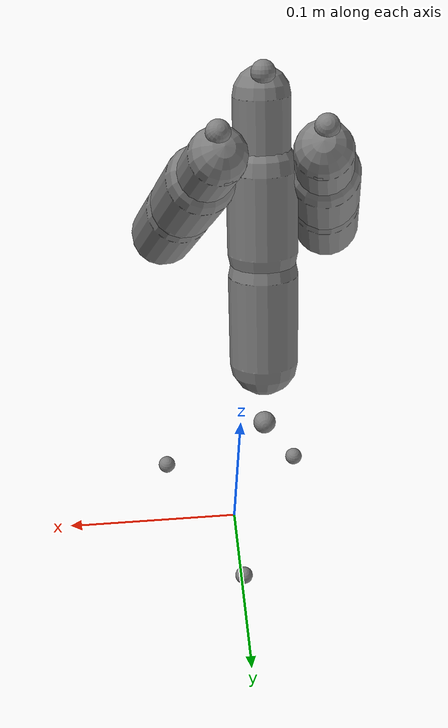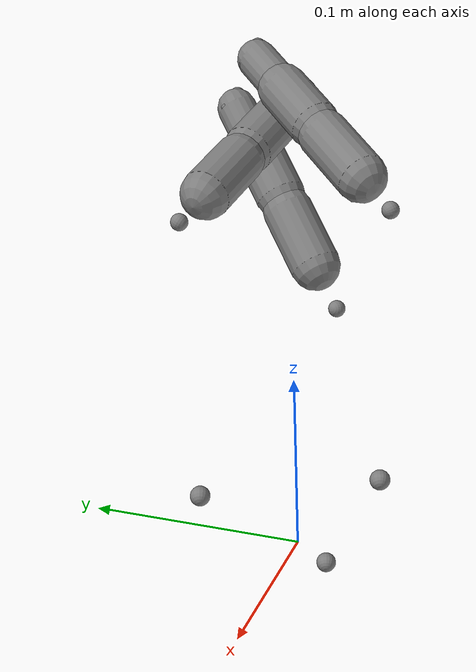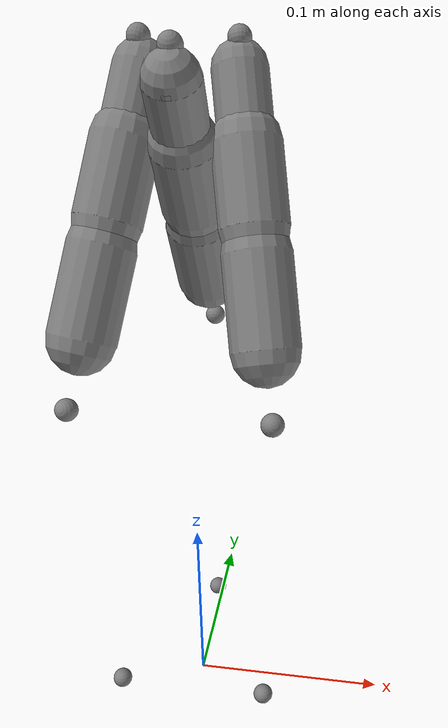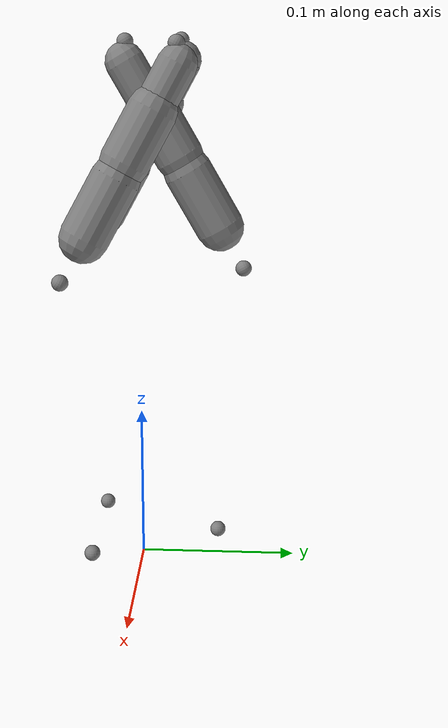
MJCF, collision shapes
<mujoco model="shadow_dexee">
  <compiler angle="radian" meshdir="assets"/>

  <option apirate="200" iterations="20" />
  <size njmax="500" nconmax="100" nstack="600000" nuser_jnt="1" nuser_site="1" nuser_tendon="1" nuser_actuator="16" nuser_sensor="1" />
  <visual>
    <map force="0.1" fogend="5" />
  </visual>
  <default>
    <!--main-->
    <default class="robot0:D_Vizual">
      <geom contype="0" conaffinity="0" group="1" material="robot0:MatViz" />
    </default>

    <!--joints-->
    <default class="robot0:asset_class">
      <joint limited="true" margin="0.01" armature="0.001" damping="0.1" frictionloss="0.001" />
      <geom friction="1 0.005 0.001" margin="0.0005" />
      <site rgba="0.4 0.9 0.4 1" />
      <general ctrllimited="true" forcelimited="true" />
    </default>

    <!--sites-->
    <default class="finger_collision_hard">
      <geom condim="4" friction="1 0.001 2e-05" solref="-7000 -167"/>
    </default>
    <default class="finger_collision_soft">
      <geom condim="6" friction="1 0.005 0.0001" solref="-2500 -100"/>
    </default>
  </default>

  <asset>
    <material name="robot0:MatViz" specular="0.75" shininess="0.1" reflectance="0.5" rgba="0.93 0.93 0.93 1" />

    <mesh name="r3_config1_base" file="Asm-MRH-HB1-Visual,00-Plastic.stl"/>
    <mesh name="r3_config1_base_col" file="Asm-MRH-HB1-Visual,00-Plastic.stl"/>
    <mesh name="r3_config1_base_puck" file="Asm-MRH-HB1-Visual,00-Puck.stl"/>
    <mesh name="r3_config1_base_puck_col" file="Asm-MRH-HB1-Visual,00-Puck.stl"/>
    <mesh name="r3_finger_base" file="MRH-FB-MainALU-Visual,00.stl"/>
    <mesh name="r3_finger_base_tb" file="MRH-FB-TB-Main-Visual,00.stl"/>
    <mesh name="r3_finger_cover" file="MRH-FB-Main-Cover-Visual,00.stl"/>
    <mesh name="r3_finger_pulley_block" file="MRH-FB-PulleyBlock1-Visual,00.stl"/>
    <mesh name="r3_finger_lid_white" file="MRH-FB-TB-Lid-White-Visual,00.stl"/>
    <mesh name="r3_finger_lid_logo" file="MRH-FB-TB-Lid-Logo-Visual,00.stl"/>
    <mesh name="r3_finger_cover_small_left" file="MRH-FB-S-Cover-L-Visual,00.stl"/>
    <mesh name="r3_finger_cover_small_right" file="MRH-FB-S-Cover-R-Visual,00.stl"/>
    <mesh name="r3_finger_base_col" file="r3_finger_base_col.stl"/>
    <mesh name="r3_finger_knuckle" file="MRH-F-J0Link-Visual,00.stl" refquat="1 -1 0 0"/>
    <mesh name="r3_finger_knuckle_col" file="MRH-F-J0Link-Visual,00.stl" refquat="1 -1 0 0"/>
    <mesh name="r3_finger_proximal" file="MRH-F-Prox-Visual,00-Main.stl" refquat="1 -1 0 0"/>
    <mesh name="r3_finger_proximal_lid" file="MRH-F-Prox-Visual,00-Lid.stl" refquat="1 -1 0 0"/>
    <mesh name="r3_finger_proximal_magtac" file="MRH-F-Prox-MagTac-Sensor-Visual,00.stl" refquat="1 -1 0 0"/>
    <mesh name="r3_finger_proximal_col" file="Asm-MRH-F-Prox-Visual,00+Magtac,00.stl" refquat="1 -1 0 0"/>
    <mesh name="r3_finger_middle" file="MRH-F-Mid-Visual,00.stl" refquat="1 -1 0 0"/>
    <mesh name="r3_finger_middle_magtac" file="MRH-F-Mid-MagTac-Sensor-Visual,00.stl" refquat="1 -1 0 0"/>
    <mesh name="r3_finger_middle_col" file="Asm-MRH-F-Mid-Visual,00+MagTac,00.stl" refquat="1 -1 0 0"/>
    <mesh name="r3_finger_distal" file="MRH-F-Distal-Visual,00.stl" refquat="0 0 0 1"/>
    <mesh name="r3_finger_distal_sensor" file="MRH-F-Distal-Sensor-Visual,00.stl" refquat="0 -1 0 0"/>
    <mesh name="r3_finger_distal_col" file="MRH-F-Distal-Visual,00.stl" refquat="0 0 0 1"/>
    <mesh name="r3_finger_distal_tip_col" file="MRH-F-Distal-Sensor-Visual,00.stl" refquat="0 -1 0 0"/>
  </asset>

  <worldbody>
    <body name="hand_base">
      <geom name="hand_base_geom" class="robot0:D_Vizual" type="mesh" mesh="r3_config1_base" mass="0.51"/>
      <geom name="hand_base_geom_col" class="robot0:D_Vizual" type="mesh" mass="0" mesh="r3_config1_base_col"/>
      <geom name="hand_base_puck_geom" class="robot0:D_Vizual" type="mesh" mass="0" mesh="r3_config1_base_puck"/>
      <geom name="hand_base_puck_geom_col" class="robot0:D_Vizual" type="mesh" mass="0" mesh="r3_config1_base_puck_col"/>
      <body pos="0 0.05 0.017" quat="1 0 0 0" name="F0_">
        <body name="F0_finger_base">
          <site name="F0_attachment_site"/>
          <geom name="F0_base_geom" class="robot0:D_Vizual" type="mesh" mass="0.89937782" mesh="r3_finger_base"/>
          <geom name="F0_base_tb_geom" class="robot0:D_Vizual" type="mesh" mass="0" mesh="r3_finger_base_tb"/>
          <geom name="F0_base_cover_geom" class="robot0:D_Vizual" type="mesh" mass="0" mesh="r3_finger_cover"/>
          <geom name="F0_base_pulley_block_geom" class="robot0:D_Vizual" type="mesh" mass="0" mesh="r3_finger_pulley_block"/>
          <geom name="F0_base_lid_white_geom" class="robot0:D_Vizual" type="mesh" mass="0" mesh="r3_finger_lid_white"/>
          <geom name="F0_base_lid_logo_geom" class="robot0:D_Vizual" type="mesh" mass="0" mesh="r3_finger_lid_logo"/>
          <geom name="F0_base_cover_small_left_geom" class="robot0:D_Vizual" type="mesh" mass="0" mesh="r3_finger_cover_small_left"/>
          <geom name="F0_base_cover_small_right_geom" class="robot0:D_Vizual" type="mesh" mass="0" mesh="r3_finger_cover_small_right"/>
          <body name="F0_finger_knuckle" pos="0 0.015 0.17902" quat="0.866024791582939 -0.5000010603626028 0.0 0.0">
            <site name="F0_j0_site"/>
            <joint name="F0_J0" axis="0 0 -1" range="-0.8727 0.8727" armature="8e-05" damping="0.009" frictionloss="0.009"/>
            <geom name="F0_knuckle_geom" class="robot0:D_Vizual" type="mesh" mass="0.13077995" mesh="r3_finger_knuckle"/>
            <body name="F0_finger_proximal" pos="0 -0.03 0">
              <geom name="primitive_f_0_0" type="capsule" size="0.015" fromto="0 0 0 0 -0.04 0"/>
              <site name="F0_j1_site"/>
              <joint name="F0_J1" axis="1 0 0" range="-1.3963 0.7854" armature="8e-05" damping="0.009"
                frictionloss="0.009"/>
              <body name="F0_finger_middle" pos="0 -0.05 0" >
                <geom name="primitive_f_0_1" type="capsule" size="0.015" fromto="0 0 0 0 -0.035 0"/>
                <site name="F0_j2_site"/>
                <joint name="F0_J2" axis="1 0 0" range="0 1.3963" armature="8e-05" damping="0.009" frictionloss="0.009"/>
                <body name="F0_finger_distal" pos="0 -0.035 0" quat="0 0 -1 1" >
                  <geom name="primitive_f_0_2" type="capsule" size="0.012" fromto="0 0 0 0 0 0.03"/>
                  <site name="F0_j3_site"/>
                  <joint name="F0_J3" axis="-1 0 0" range="-0.5236 1.4835" armature="8e-05" damping="0.009"
                    frictionloss="0.009"/>
                  <site name="F0_fingertip_site" pos="0 -0.00625 0.04"/>
                  <site name="F0_distal_site" pos="0 0.007 0.03"/>
                </body>
              </body>
            </body>
          </body>
        </body>
      </body>

      <body pos="0.039 -0.029 0.017" quat="-0.16212752892551119 0 0 0.98676981326168844" name="F1_">
        <body name="F1_finger_base" >
          <site name="F1_attachment_site"/>
          <geom name="F1_base_geom" class="robot0:D_Vizual" type="mesh" mass="0.89937782" mesh="r3_finger_base"/>
          <geom name="F1_base_tb_geom" class="robot0:D_Vizual" type="mesh" mass="0" mesh="r3_finger_base_tb"/>
          <geom name="F1_base_cover_geom" class="robot0:D_Vizual" type="mesh" mass="0" mesh="r3_finger_cover"/>
          <geom name="F1_base_pulley_block_geom" class="robot0:D_Vizual" type="mesh" mass="0" mesh="r3_finger_pulley_block"/>
          <geom name="F1_base_lid_white_geom" class="robot0:D_Vizual" type="mesh" mass="0"
            mesh="r3_finger_lid_white"/>
          <geom name="F1_base_lid_logo_geom" class="robot0:D_Vizual" type="mesh" mass="0" mesh="r3_finger_lid_logo"/>
          <geom name="F1_base_cover_small_left_geom" class="robot0:D_Vizual" type="mesh" mass="0"
            mesh="r3_finger_cover_small_left"/>
          <geom name="F1_base_cover_small_right_geom" class="robot0:D_Vizual" type="mesh" mass="0"
            mesh="r3_finger_cover_small_right"/>
          <body name="F1_finger_knuckle" pos="0 0.015 0.17902" euler="-1.0472 0 0" >
            <site name="F1_j0_site"/>
            <joint name="F1_J0" axis="0 0 -1" range="-0.8727 0.8727" armature="8e-05" damping="0.009" frictionloss="0.009"/>
            <geom name="F1_knuckle_geom" class="robot0:D_Vizual" type="mesh" mass="0.13077995"
              mesh="r3_finger_knuckle"/>
            <body name="F1_finger_proximal" pos="0 -0.03 0" >
              <geom name="primitive_f_1_0" type="capsule" size="0.015" fromto="0 0 0 0 -0.04 0"/>
              <site name="F1_j1_site"/>
              <joint name="F1_J1" axis="1 0 0" range="-1.3963 0.7854" armature="8e-05" damping="0.009"
                frictionloss="0.009"/>
              <body name="F1_finger_middle" pos="0 -0.05 0" >
                <geom name="primitive_f_1_1" type="capsule" size="0.015" fromto="0 0 0 0 -0.035 0"/>
                <site name="F1_j2_site"/>
                <joint name="F1_J2" axis="1 0 0" range="0 1.3963" armature="8e-05" damping="0.009" frictionloss="0.009"/>
                <body name="F1_finger_distal" pos="0 -0.035 0" quat="0 0 -1 1" >
                  <geom name="primitive_f_1_2" type="capsule" size="0.012" fromto="0 0 0 0 0 0.03"/>
                  <site name="F1_j3_site"/>
                  <joint name="F1_J3" axis="-1 0 0" range="-0.5236 1.4835" armature="8e-05" damping="0.009"
                    frictionloss="0.009"/>
                  <site name="F1_fingertip_site" pos="0 -0.00625 0.04"/>
                  <site name="F1_distal_site" pos="0 0.007 0.03"/>
                </body>
              </body>
            </body>
          </body>
        </body>
      </body>

      <body pos="-0.039 -0.029 0.017" quat="0.16212752892551119 0 0 0.98676981326168844" name="F2_">
        <body name="F2_finger_base" >
          <site name="F2_attachment_site"/>
          <geom name="F2_base_geom" class="robot0:D_Vizual" type="mesh" mass="0.89937782" mesh="r3_finger_base"/>
          <geom name="F2_base_tb_geom" class="robot0:D_Vizual" type="mesh" mass="0" mesh="r3_finger_base_tb"/>
          <geom name="F2_base_cover_geom" class="robot0:D_Vizual" type="mesh" mass="0" mesh="r3_finger_cover"/>
          <geom name="F2_base_pulley_block_geom" class="robot0:D_Vizual" type="mesh" mass="0" mesh="r3_finger_pulley_block"/>
          <geom name="F2_base_lid_white_geom" class="robot0:D_Vizual" type="mesh" mass="0"
            mesh="r3_finger_lid_white"/>
          <geom name="F2_base_lid_logo_geom" class="robot0:D_Vizual" type="mesh" mass="0" mesh="r3_finger_lid_logo"/>
          <geom name="F2_base_cover_small_left_geom" class="robot0:D_Vizual" type="mesh" mass="0"
            mesh="r3_finger_cover_small_left"/>
          <geom name="F2_base_cover_small_right_geom" class="robot0:D_Vizual" type="mesh" mass="0"
            mesh="r3_finger_cover_small_right"/>
          <body name="F2_finger_knuckle" pos="0 0.015 0.17902" euler="-1.0472 0 0" >
            <site name="F2_j0_site"/>
            <joint name="F2_J0" axis="0 0 -1" range="-0.8727 0.8727" armature="8e-05" damping="0.009" frictionloss="0.009"/>
            <geom name="F2_knuckle_geom" class="robot0:D_Vizual" type="mesh" mass="0.13077995"
              mesh="r3_finger_knuckle"/>
            <body name="F2_finger_proximal" pos="0 -0.03 0" >
              <geom name="primitive_f_2_0" type="capsule" size="0.015 0.02" fromto="0 0 0 0 -0.04 0"/>
              <site name="F2_j1_site"/>
              <joint name="F2_J1" axis="1 0 0" range="-1.3963 0.7854" armature="8e-05" damping="0.009"
                frictionloss="0.009"/>
              <body name="F2_finger_middle" pos="0 -0.05 0" >
                <geom name="primitive_f_2_1" type="capsule" size="0.015 0.0175" fromto="0 0 0 0 -0.035 0"/>
                <site name="F2_j2_site"/>
                <joint name="F2_J2" axis="1 0 0" range="0 1.3963" armature="8e-05" damping="0.009" frictionloss="0.009"/>
                <body name="F2_finger_distal" pos="0 -0.035 0" quat="0 0 -1 1" >
                  <geom name="primitive_f_2_2" type="capsule" size="0.012 0.015" fromto="0 0 0 0 0 0.03"/>
                  <site name="F2_j3_site"/>
                  <joint name="F2_J3" axis="-1 0 0" range="-0.5236 1.4835" armature="8e-05" damping="0.009"
                    frictionloss="0.009"/>
                  <site name="F2_fingertip_site" pos="0 -0.00625 0.04"/>
                  <site name="F2_distal_site" pos="0 0.007 0.03"/>
                </body>
              </body>
            </body>
          </body>
        </body>
      </body>
    </body>
  </worldbody>

  <actuator>
    <general name="F0_J0_actuator"  ctrlrange="-0.8727 0.8727"
      forcerange="-0.9 0.53" dyntype="none" joint="F0_J0" />
    <general name="F0_J1_actuator"  ctrlrange="-1.3963 0.7854"
      forcerange="-0.35 1.2" dyntype="none" joint="F0_J1" />
    <general name="F0_J2_actuator"  ctrlrange="0 1.3963" forcerange="-0.52 0.7"
      dyntype="none" joint="F0_J2" />
    <general name="F0_J3_actuator"  ctrlrange="-0.5236 1.4835"
      forcerange="-0.3 0.3" dyntype="none" joint="F0_J3" />
    <general name="F1_J0_actuator"  ctrlrange="-0.8727 0.8727"
      forcerange="-0.9 0.53" dyntype="none" joint="F1_J0" />
    <general name="F1_J1_actuator"  ctrlrange="-1.3963 0.7854"
      forcerange="-0.35 1.2" dyntype="none" joint="F1_J1" />
    <general name="F1_J2_actuator"  ctrlrange="0 1.3963" forcerange="-0.52 0.7"
      dyntype="none" joint="F1_J2" />
    <general name="F1_J3_actuator"  ctrlrange="-0.5236 1.4835"
      forcerange="-0.3 0.3" dyntype="none" joint="F1_J3" />
    <general name="F2_J0_actuator"  ctrlrange="-0.8727 0.8727"
      forcerange="-0.9 0.53" dyntype="none" joint="F2_J0" />
    <general name="F2_J1_actuator"  ctrlrange="-1.3963 0.7854"
      forcerange="-0.35 1.2" dyntype="none" joint="F2_J1" />
    <general name="F2_J2_actuator"  ctrlrange="0 1.3963" forcerange="-0.52 0.7"
      dyntype="none" joint="F2_J2" />
    <general name="F2_J3_actuator"  ctrlrange="-0.5236 1.4835"
      forcerange="-0.3 0.3" dyntype="none" joint="F2_J3" />
  </actuator>

  <sensor>
    <jointpos name="F0_j0_torque" joint="F0_J0"/>
    <jointpos name="F0_j1_torque" joint="F0_J1"/>
    <jointpos name="F0_j2_torque" joint="F0_J2"/>
    <jointpos name="F0_j3_torque" joint="F0_J3"/>
    <jointpos name="F1_j0_torque" joint="F1_J0"/>
    <jointpos name="F1_j1_torque" joint="F1_J1"/>
    <jointpos name="F1_j2_torque" joint="F1_J2"/>
    <jointpos name="F1_j3_torque" joint="F1_J3"/>
    <jointpos name="F2_j0_torque" joint="F2_J0"/>
    <jointpos name="F2_j1_torque" joint="F2_J1"/>
    <jointpos name="F2_j2_torque" joint="F2_J2"/>
    <jointpos name="F2_j3_torque" joint="F2_J3"/>
  </sensor>
</mujoco>
